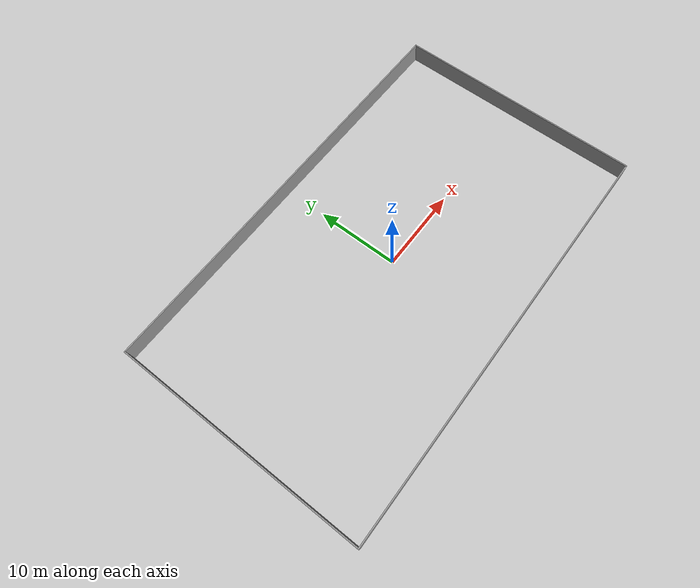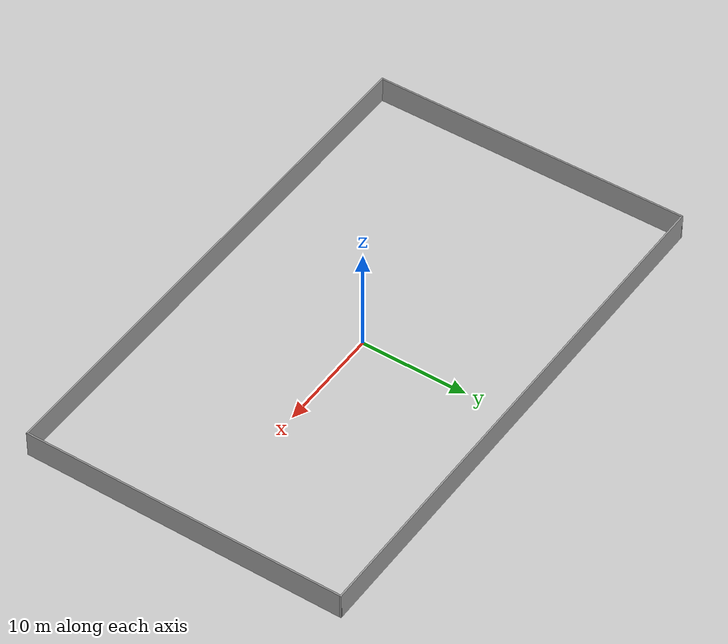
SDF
<?xml version='1.0'?>
<sdf version='1.6'>
  <model name='factoryWall'>
    <pose frame=''>0 0 0 0 -0 0</pose>
    <link name='Wall_0'>
      <collision name='Wall_0_Collision'>
        <geometry>
          <box>
            <size>30.15 0.15 2.5</size>
          </box>
        </geometry>
        <pose frame=''>0 0 1.25 0 -0 0</pose>
      </collision>
      <visual name='Wall_0_Visual'>
        <pose frame=''>0 0 1.25 0 -0 0</pose>
        <geometry>
          <box>
            <size>30.15 0.15 2.5</size>
          </box>
        </geometry>
        <material>
          <script>
            <uri>file://media/materials/scripts/gazebo.material</uri>
            <name>Gazebo/Grey</name>
          </script>
          <ambient>1 1 1 1</ambient>
        </material>
        <meta>
          <layer>0</layer>
        </meta>
      </visual>
      <pose frame=''>25 0 0 0 -0 1.5708</pose>
    </link>
    <link name='Wall_2'>
      <collision name='Wall_2_Collision'>
        <geometry>
          <box>
            <size>30.15 0.15 2.5</size>
          </box>
        </geometry>
        <pose frame=''>0 0 1.25 0 -0 0</pose>
      </collision>
      <visual name='Wall_2_Visual'>
        <pose frame=''>0 0 1.25 0 -0 0</pose>
        <geometry>
          <box>
            <size>30.15 0.15 2.5</size>
          </box>
        </geometry>
        <material>
          <script>
            <uri>file://media/materials/scripts/gazebo.material</uri>
            <name>Gazebo/Grey</name>
          </script>
          <ambient>1 1 1 1</ambient>
        </material>
        <meta>
          <layer>0</layer>
        </meta>
      </visual>
      <pose frame=''>-25 0 0 0 -0 1.5708</pose>
    </link>
    <link name='Wall_4'>
      <collision name='Wall_4_Collision'>
        <geometry>
          <box>
            <size>50.15 0.15 2.5</size>
          </box>
        </geometry>
        <pose frame=''>0 0 1.25 0 -0 0</pose>
      </collision>
      <visual name='Wall_4_Visual'>
        <pose frame=''>0 0 1.25 0 -0 0</pose>
        <geometry>
          <box>
            <size>50.15 0.15 2.5</size>
          </box>
        </geometry>
        <material>
          <script>
            <uri>file://media/materials/scripts/gazebo.material</uri>
            <name>Gazebo/Grey</name>
          </script>
          <ambient>1 1 1 1</ambient>
        </material>
        <meta>
          <layer>0</layer>
        </meta>
      </visual>
      <pose frame=''>0 15 0 0 -0 0</pose>
    </link>
    <link name='Wall_6'>
      <collision name='Wall_6_Collision'>
        <geometry>
          <box>
            <size>50.15 0.15 2.5</size>
          </box>
        </geometry>
        <pose frame=''>0 0 1.25 0 -0 0</pose>
      </collision>
      <visual name='Wall_6_Visual'>
        <pose frame=''>0 0 1.25 0 -0 0</pose>
        <geometry>
          <box>
            <size>50.15 0.15 2.5</size>
          </box>
        </geometry>
        <material>
          <script>
            <uri>file://media/materials/scripts/gazebo.material</uri>
            <name>Gazebo/Grey</name>
          </script>
          <ambient>1 1 1 1</ambient>
        </material>
        <meta>
          <layer>0</layer>
        </meta>
      </visual>
      <pose frame=''>0 -15 0 0 -0 0</pose>
    </link>
    <static>1</static>
  </model>
</sdf>
